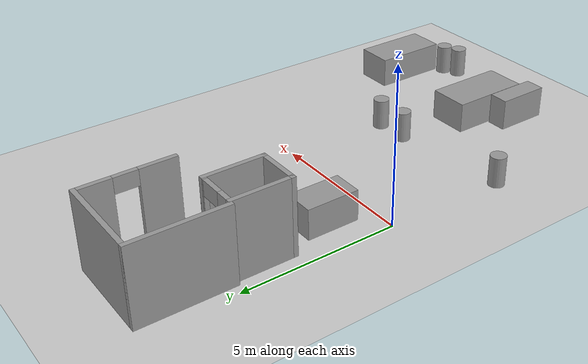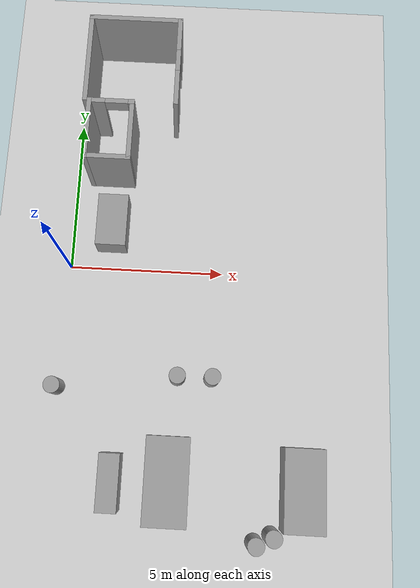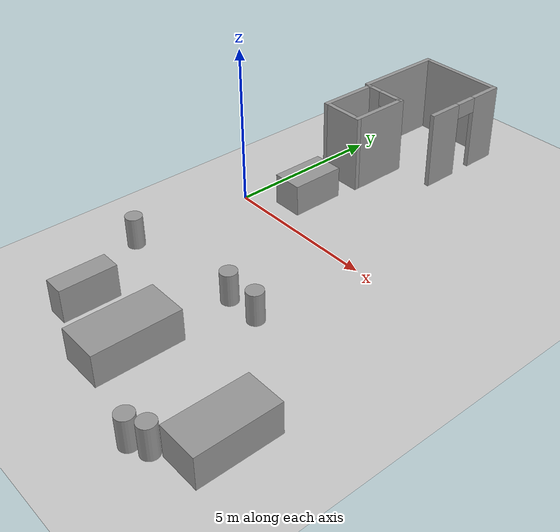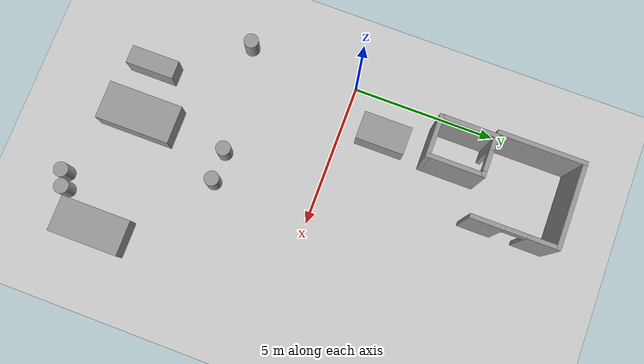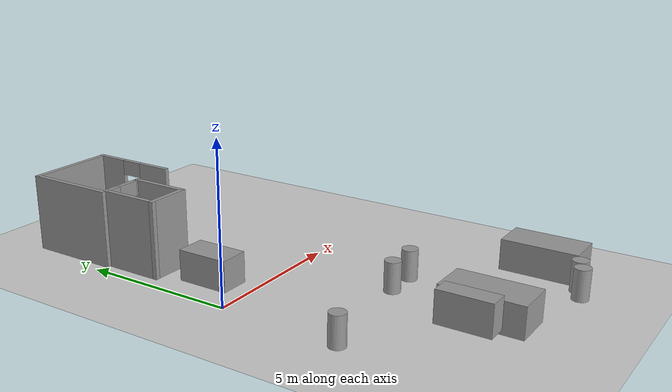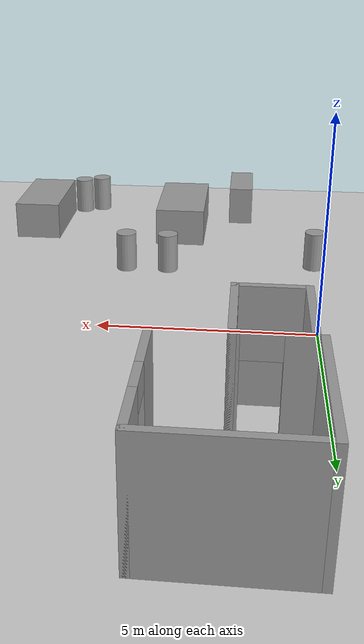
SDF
<sdf version="1.6">
 <world name="default">
  <model name="ground_plane">
   <static>1</static>
   <link name="link">
    <collision name="collision">
     <geometry><plane><normal>0 0 1</normal><size>100 100</size></plane></geometry>
     <surface><friction><ode><mu>100</mu><mu2>50</mu2></ode></friction></surface>
    </collision>
    <visual name="visual">
     <cast_shadows>0</cast_shadows>
     <geometry><plane><normal>0 0 1</normal><size>100 100</size></plane></geometry>
     <material>
      <script><uri>file://media/materials/scripts/gazebo.material</uri><name>Gazebo/Grey</name></script>
     </material>
    </visual>
   </link>
  </model>
  <model name="cma_banheiro_e">
   <pose>1.18358 3.89879 0 0 -0 0</pose>
   <link name="Wall_10">
    <collision name="Wall_10_Collision">
     <geometry><box><size>1.5 0.15 2.5</size></box></geometry>
     <pose>0 0 1.25 0 -0 0</pose>
    </collision>
    <visual name="Wall_10_Visual">
     <pose>0 0 1.25 0 -0 0</pose>
     <geometry><box><size>1.5 0.15 2.5</size></box></geometry>
     <material>
      <script><uri>file://media/materials/scripts/gazebo.material</uri><name>Gazebo/Grey</name></script>
      <ambient>1 1 1 1</ambient>
     </material>
    </visual>
    <pose>0 -0.925 0 0 -0 3.14159</pose>
   </link>
   <link name="Wall_11">
    <collision name="Wall_11_Collision">
     <geometry><box><size>2 0.15 2.5</size></box></geometry>
     <pose>0 0 1.25 0 -0 0</pose>
    </collision>
    <visual name="Wall_11_Visual">
     <pose>0 0 1.25 0 -0 0</pose>
     <geometry><box><size>2 0.15 2.5</size></box></geometry>
     <material>
      <script><uri>file://media/materials/scripts/gazebo.material</uri><name>Gazebo/Grey</name></script>
      <ambient>1 1 1 1</ambient>
     </material>
    </visual>
    <pose>-0.675 0 0 0 -0 1.5708</pose>
   </link>
   <link name="Wall_12">
    <pose>0 0.925 0 0 -0 0</pose>
    <visual name="Wall_12_Visual_0">
     <pose>-0.4625 0 1.25 0 -0 0</pose>
     <geometry><box><size>0.575 0.15 2.5</size></box></geometry>
     <material>
      <script><uri>file://media/materials/scripts/gazebo.material</uri><name>Gazebo/Grey</name></script>
      <ambient>1 1 1 1</ambient>
     </material>
    </visual>
    <collision name="Wall_12_Collision_0">
     <geometry><box><size>0.575 0.15 2.5</size></box></geometry>
     <pose>-0.4625 0 1.25 0 -0 0</pose>
    </collision>
    <visual name="Wall_12_Visual_1">
     <pose>0.6475 0 1.25 0 -0 0</pose>
     <geometry><box><size>0.205 0.15 2.5</size></box></geometry>
     <material>
      <script><uri>file://media/materials/scripts/gazebo.material</uri><name>Gazebo/Grey</name></script>
      <ambient>1 1 1 1</ambient>
     </material>
    </visual>
    <collision name="Wall_12_Collision_1">
     <geometry><box><size>0.205 0.15 2.5</size></box></geometry>
     <pose>0.6475 0 1.25 0 -0 0</pose>
    </collision>
    <visual name="Wall_12_Visual_2">
     <pose>0.185 0 2.25 0 -0 0</pose>
     <geometry><box><size>0.72 0.15 0.5</size></box></geometry>
     <material>
      <script><uri>file://media/materials/scripts/gazebo.material</uri><name>Gazebo/Grey</name></script>
      <ambient>1 1 1 1</ambient>
     </material>
    </visual>
    <collision name="Wall_12_Collision_2">
     <geometry><box><size>0.72 0.15 0.5</size></box></geometry>
     <pose>0.185 0 2.25 0 -0 0</pose>
    </collision>
   </link>
   <link name="Wall_13">
    <collision name="Wall_13_Collision">
     <geometry><box><size>2 0.15 2.5</size></box></geometry>
     <pose>0 0 1.25 0 -0 0</pose>
    </collision>
    <visual name="Wall_13_Visual">
     <pose>0 0 1.25 0 -0 0</pose>
     <geometry><box><size>2 0.15 2.5</size></box></geometry>
     <material>
      <script><uri>file://media/materials/scripts/gazebo.material</uri><name>Gazebo/Grey</name></script>
      <ambient>1 1 1 1</ambient>
     </material>
    </visual>
    <pose>0.675 0 0 0 0 -1.5708</pose>
   </link>
   <static>1</static>
  </model>
  <model name="cma_qe">
   <pose>1.79561 6.31228 0 0 -0 0</pose>
   <link name="Wall_15">
    <collision name="Wall_15_Collision">
     <geometry><box><size>3 0.15 2.5</size></box></geometry>
     <pose>0 0 1.25 0 -0 0</pose>
    </collision>
    <visual name="Wall_15_Visual">
     <pose>0 0 1.25 0 -0 0</pose>
     <geometry><box><size>3 0.15 2.5</size></box></geometry>
     <material>
      <script><uri>file://media/materials/scripts/gazebo.material</uri><name>Gazebo/Grey</name></script>
      <ambient>1 1 1 1</ambient>
     </material>
    </visual>
    <pose>-1.425 0 0 0 -0 1.5708</pose>
   </link>
   <link name="Wall_16">
    <collision name="Wall_16_Collision">
     <geometry><box><size>3 0.15 2.5</size></box></geometry>
     <pose>0 0 1.25 0 -0 0</pose>
    </collision>
    <visual name="Wall_16_Visual">
     <pose>0 0 1.25 0 -0 0</pose>
     <geometry><box><size>3 0.15 2.5</size></box></geometry>
     <material>
      <script><uri>file://media/materials/scripts/gazebo.material</uri><name>Gazebo/Grey</name></script>
      <ambient>1 1 1 1</ambient>
     </material>
    </visual>
    <pose>0 1.425 0 0 -0 0</pose>
   </link>
   <link name="Wall_17">
    <pose>1.425 0 0 0 0 -1.5708</pose>
    <visual name="Wall_17_Visual_0">
     <pose>-0.945 0 1.25 0 -0 0</pose>
     <geometry><box><size>1.11 0.15 2.5</size></box></geometry>
     <material>
      <script><uri>file://media/materials/scripts/gazebo.material</uri><name>Gazebo/Grey</name></script>
      <ambient>1 1 1 1</ambient>
     </material>
    </visual>
    <collision name="Wall_17_Collision_0">
     <geometry><box><size>1.11 0.15 2.5</size></box></geometry>
     <pose>-0.945 0 1.25 0 -0 0</pose>
    </collision>
    <visual name="Wall_17_Visual_1">
     <pose>0.92 0 1.25 0 -0 0</pose>
     <geometry><box><size>1.16 0.15 2.5</size></box></geometry>
     <material>
      <script><uri>file://media/materials/scripts/gazebo.material</uri><name>Gazebo/Grey</name></script>
      <ambient>1 1 1 1</ambient>
     </material>
    </visual>
    <collision name="Wall_17_Collision_1">
     <geometry><box><size>1.16 0.15 2.5</size></box></geometry>
     <pose>0.92 0 1.25 0 -0 0</pose>
    </collision>
    <visual name="Wall_17_Visual_2">
     <pose>-0.025 0 2.25 0 -0 0</pose>
     <geometry><box><size>0.73 0.15 0.5</size></box></geometry>
     <material>
      <script><uri>file://media/materials/scripts/gazebo.material</uri><name>Gazebo/Grey</name></script>
      <ambient>1 1 1 1</ambient>
     </material>
    </visual>
    <collision name="Wall_17_Collision_2">
     <geometry><box><size>0.73 0.15 0.5</size></box></geometry>
     <pose>-0.025 0 2.25 0 -0 0</pose>
    </collision>
   </link>
   <static>1</static>
  </model>
  <model name="cma_sofa_2_lugares">
   <link name="link_0">
    <pose>-0.034013 -0.039828 0 0 -0 0</pose>
    <inertial>
     <mass>1.66071</mass>
     <inertia>
      <ixx>0.538183</ixx>
      <ixy>0</ixy>
      <ixz>0</ixz>
      <iyy>0.270519</iyy>
      <iyz>0</iyz>
      <izz>0.531915</izz>
     </inertia>
    </inertial>
    <visual name="visual">
     <geometry><box><size>0.977147 1.69968 1</size></box></geometry>
     <material>
      <lighting>1</lighting>
      <script><uri>file://media/materials/scripts/gazebo.material</uri><name>Gazebo/Grey</name></script>
      <ambient>0.3 0.3 0.3 1</ambient>
      <diffuse>0.7 0.7 0.7 1</diffuse>
      <specular>0.01 0.01 0.01 1</specular>
      <emissive>0 0 0 1</emissive>
     </material>
    </visual>
    <collision name="collision">
     <geometry><box><size>0.977147 1.69968 1</size></box></geometry>
     <surface>
      <friction>
       <ode><mu>1</mu><mu2>1</mu2><fdir1>0 0 0</fdir1><slip1>0</slip1><slip2>0</slip2></ode>
       <torsional>
        <coefficient>1</coefficient>
        <patch_radius>0</patch_radius>
        <surface_radius>0</surface_radius>
        <use_patch_radius>1</use_patch_radius>
        <ode><slip>0</slip></ode>
       </torsional>
      </friction>
      <bounce><restitution_coefficient>0</restitution_coefficient><threshold>1e+06</threshold></bounce>
      <contact>
       <collide_without_contact>0</collide_without_contact>
       <collide_without_contact_bitmask>1</collide_without_contact_bitmask>
       <collide_bitmask>1</collide_bitmask>
       <ode>
        <soft_cfm>0</soft_cfm>
        <soft_erp>0.2</soft_erp>
        <kp>1e+13</kp>
        <kd>1</kd>
        <max_vel>0.01</max_vel>
        <min_depth>0</min_depth>
       </ode>
       <bullet>
        <split_impulse>1</split_impulse>
        <split_impulse_penetration_threshold>-0.01</split_impulse_penetration_threshold>
        <soft_cfm>0</soft_cfm>
        <soft_erp>0.2</soft_erp>
        <kp>1e+13</kp>
        <kd>1</kd>
       </bullet>
      </contact>
     </surface>
    </collision>
   </link>
   <static>0</static>
   <pose>1.36451 1.473 0.499998 -0 5e-06 4.4e-05</pose>
  </model>
  <model name="cma_sofa_ch2">
   <link name="link_0">
    <pose>7.54152 -9.06061 0.5 0 -0 0</pose>
    <inertial>
     <mass>3.05287</mass>
     <inertia><ixx>1.79053</ixx><ixy>0</ixy><ixz>0</ixz><iyy>0.647089</iyy><iyz>0</iyz><izz>1.92881</izz></inertia>
    </inertial>
    <visual name="visual">
     <geometry><box><size>1.24235 2.45729 1</size></box></geometry>
     <material>
      <lighting>1</lighting>
      <script><uri>file://media/materials/scripts/gazebo.material</uri><name>Gazebo/Grey</name></script>
      <ambient>0.3 0.3 0.3 1</ambient>
      <diffuse>0.7 0.7 0.7 1</diffuse>
      <specular>0.01 0.01 0.01 1</specular>
      <emissive>0 0 0 1</emissive>
     </material>
    </visual>
    <collision name="collision">
     <geometry><box><size>1.24235 2.45729 1</size></box></geometry>
     <surface>
      <friction>
       <ode><mu>1</mu><mu2>1</mu2><fdir1>0 0 0</fdir1><slip1>0</slip1><slip2>0</slip2></ode>
       <torsional>
        <coefficient>1</coefficient>
        <patch_radius>0</patch_radius>
        <surface_radius>0</surface_radius>
        <use_patch_radius>1</use_patch_radius>
        <ode><slip>0</slip></ode>
       </torsional>
      </friction>
      <bounce><restitution_coefficient>0</restitution_coefficient><threshold>1e+06</threshold></bounce>
      <contact>
       <collide_without_contact>0</collide_without_contact>
       <collide_without_contact_bitmask>1</collide_without_contact_bitmask>
       <collide_bitmask>1</collide_bitmask>
       <ode>
        <soft_cfm>0</soft_cfm>
        <soft_erp>0.2</soft_erp>
        <kp>1e+13</kp>
        <kd>1</kd>
        <max_vel>0.01</max_vel>
        <min_depth>0</min_depth>
       </ode>
       <bullet>
        <split_impulse>1</split_impulse>
        <split_impulse_penetration_threshold>-0.01</split_impulse_penetration_threshold>
        <soft_cfm>0</soft_cfm>
        <soft_erp>0.2</soft_erp>
        <kp>1e+13</kp>
        <kd>1</kd>
       </bullet>
      </contact>
     </surface>
    </collision>
   </link>
   <model name="cma_armarioL">
    <link name="link_0">
     <pose>3.66226 -6.16735 0.5 0 -0 0</pose>
     <inertial>
      <mass>1.04821</mass>
      <inertia>
       <ixx>0.330873</ixx>
       <ixy>0</ixy>
       <ixz>0</ixz>
       <iyy>0.121777</iyy>
       <iyz>0</iyz>
       <izz>0.277949</izz>
      </inertia>
     </inertial>
     <visual name="visual">
      <geometry><box><size>0.627792 1.66972 1</size></box></geometry>
      <material>
       <lighting>1</lighting>
       <script><uri>file://media/materials/scripts/gazebo.material</uri><name>Gazebo/Grey</name></script>
       <ambient>0.3 0.3 0.3 1</ambient>
       <diffuse>0.7 0.7 0.7 1</diffuse>
       <specular>0.01 0.01 0.01 1</specular>
       <emissive>0 0 0 1</emissive>
      </material>
     </visual>
     <collision name="collision">
      <geometry><box><size>0.627792 1.66972 1</size></box></geometry>
      <surface>
       <friction>
        <ode><mu>1</mu><mu2>1</mu2><fdir1>0 0 0</fdir1><slip1>0</slip1><slip2>0</slip2></ode>
        <torsional>
         <coefficient>1</coefficient>
         <patch_radius>0</patch_radius>
         <surface_radius>0</surface_radius>
         <use_patch_radius>1</use_patch_radius>
         <ode><slip>0</slip></ode>
        </torsional>
       </friction>
       <bounce><restitution_coefficient>0</restitution_coefficient><threshold>1e+06</threshold></bounce>
       <contact>
        <collide_without_contact>0</collide_without_contact>
        <collide_without_contact_bitmask>1</collide_without_contact_bitmask>
        <collide_bitmask>1</collide_bitmask>
        <ode>
         <soft_cfm>0</soft_cfm>
         <soft_erp>0.2</soft_erp>
         <kp>1e+13</kp>
         <kd>1</kd>
         <max_vel>0.01</max_vel>
         <min_depth>0</min_depth>
        </ode>
        <bullet>
         <split_impulse>1</split_impulse>
         <split_impulse_penetration_threshold>-0.01</split_impulse_penetration_threshold>
         <soft_cfm>0</soft_cfm>
         <soft_erp>0.2</soft_erp>
         <kp>1e+13</kp>
         <kd>1</kd>
        </bullet>
       </contact>
      </surface>
     </collision>
    </link>
    <static>0</static>
    <pose>-1.91803 -2.92011 0.5 0 -0 0</pose>
   </model>
   <model name="cma_cesto">
    <link name="link_1">
     <pose>-0.329659 -1.55494 0 0 -0 0</pose>
     <inertial>
      <mass>0.267897</mass>
      <inertia>
       <ixx>0.0268102</ixx>
       <ixy>0</ixy>
       <ixz>0</ixz>
       <iyy>0.0268102</iyy>
       <iyz>0</iyz>
       <izz>0.00897111</izz>
      </inertia>
     </inertial>
     <visual name="visual">
      <geometry><cylinder><radius>0.258792</radius><length>1</length></cylinder></geometry>
      <material>
       <lighting>1</lighting>
       <script><uri>file://media/materials/scripts/gazebo.material</uri><name>Gazebo/Grey</name></script>
       <ambient>0.3 0.3 0.3 1</ambient>
       <diffuse>0.7 0.7 0.7 1</diffuse>
       <specular>0.01 0.01 0.01 1</specular>
       <emissive>0 0 0 1</emissive>
      </material>
     </visual>
     <collision name="collision">
      <geometry><cylinder><radius>0.258792</radius><length>1</length></cylinder></geometry>
      <surface>
       <friction>
        <ode><mu>1</mu><mu2>1</mu2><fdir1>0 0 0</fdir1><slip1>0</slip1><slip2>0</slip2></ode>
        <torsional>
         <coefficient>1</coefficient>
         <patch_radius>0</patch_radius>
         <surface_radius>0</surface_radius>
         <use_patch_radius>1</use_patch_radius>
         <ode><slip>0</slip></ode>
        </torsional>
       </friction>
       <bounce><restitution_coefficient>0</restitution_coefficient><threshold>1e+06</threshold></bounce>
       <contact>
        <collide_without_contact>0</collide_without_contact>
        <collide_without_contact_bitmask>1</collide_without_contact_bitmask>
        <collide_bitmask>1</collide_bitmask>
        <ode>
         <soft_cfm>0</soft_cfm>
         <soft_erp>0.2</soft_erp>
         <kp>1e+13</kp>
         <kd>1</kd>
         <max_vel>0.01</max_vel>
         <min_depth>0</min_depth>
        </ode>
        <bullet>
         <split_impulse>1</split_impulse>
         <split_impulse_penetration_threshold>-0.01</split_impulse_penetration_threshold>
         <soft_cfm>0</soft_cfm>
         <soft_erp>0.2</soft_erp>
         <kp>1e+13</kp>
         <kd>1</kd>
        </bullet>
       </contact>
      </surface>
     </collision>
    </link>
    <static>0</static>
    <pose>6.97935 -8.88509 0.5 0 -0 0</pose>
   </model>
   <model name="cma_cesto_0">
    <link name="link_1">
     <pose>-0.329659 -1.55494 0 0 -0 0</pose>
     <inertial>
      <mass>0.267897</mass>
      <inertia>
       <ixx>0.0268102</ixx>
       <ixy>0</ixy>
       <ixz>0</ixz>
       <iyy>0.0268102</iyy>
       <iyz>0</iyz>
       <izz>0.00897111</izz>
      </inertia>
     </inertial>
     <visual name="visual">
      <geometry><cylinder><radius>0.258792</radius><length>1</length></cylinder></geometry>
      <material>
       <lighting>1</lighting>
       <script><uri>file://media/materials/scripts/gazebo.material</uri><name>Gazebo/Grey</name></script>
       <ambient>0.3 0.3 0.3 1</ambient>
       <diffuse>0.7 0.7 0.7 1</diffuse>
       <specular>0.01 0.01 0.01 1</specular>
       <emissive>0 0 0 1</emissive>
      </material>
     </visual>
     <collision name="collision">
      <geometry><cylinder><radius>0.258792</radius><length>1</length></cylinder></geometry>
      <surface>
       <friction>
        <ode><mu>1</mu><mu2>1</mu2><fdir1>0 0 0</fdir1><slip1>0</slip1><slip2>0</slip2></ode>
        <torsional>
         <coefficient>1</coefficient>
         <patch_radius>0</patch_radius>
         <surface_radius>0</surface_radius>
         <use_patch_radius>1</use_patch_radius>
         <ode><slip>0</slip></ode>
        </torsional>
       </friction>
       <bounce><restitution_coefficient>0</restitution_coefficient><threshold>1e+06</threshold></bounce>
       <contact>
        <collide_without_contact>0</collide_without_contact>
        <collide_without_contact_bitmask>1</collide_without_contact_bitmask>
        <collide_bitmask>1</collide_bitmask>
        <ode>
         <soft_cfm>0</soft_cfm>
         <soft_erp>0.2</soft_erp>
         <kp>1e+13</kp>
         <kd>1</kd>
         <max_vel>0.01</max_vel>
         <min_depth>0</min_depth>
        </ode>
        <bullet>
         <split_impulse>1</split_impulse>
         <split_impulse_penetration_threshold>-0.01</split_impulse_penetration_threshold>
         <soft_cfm>0</soft_cfm>
         <soft_erp>0.2</soft_erp>
         <kp>1e+13</kp>
         <kd>1</kd>
        </bullet>
       </contact>
      </surface>
     </collision>
    </link>
    <static>0</static>
    <pose>6.4663 -9.11922 0.5 0 -0 0</pose>
   </model>
   <model name="cma_cesto_1">
    <link name="link_1">
     <pose>-0.329659 -1.55494 0 0 -0 0</pose>
     <inertial>
      <mass>0.267897</mass>
      <inertia>
       <ixx>0.0268102</ixx>
       <ixy>0</ixy>
       <ixz>0</ixz>
       <iyy>0.0268102</iyy>
       <iyz>0</iyz>
       <izz>0.00897111</izz>
      </inertia>
     </inertial>
     <visual name="visual">
      <geometry><cylinder><radius>0.258792</radius><length>1</length></cylinder></geometry>
      <material>
       <lighting>1</lighting>
       <script><uri>file://media/materials/scripts/gazebo.material</uri><name>Gazebo/Grey</name></script>
       <ambient>0.3 0.3 0.3 1</ambient>
       <diffuse>0.7 0.7 0.7 1</diffuse>
       <specular>0.01 0.01 0.01 1</specular>
       <emissive>0 0 0 1</emissive>
      </material>
     </visual>
     <collision name="collision">
      <geometry><cylinder><radius>0.258792</radius><length>1</length></cylinder></geometry>
      <surface>
       <friction>
        <ode><mu>1</mu><mu2>1</mu2><fdir1>0 0 0</fdir1><slip1>0</slip1><slip2>0</slip2></ode>
        <torsional>
         <coefficient>1</coefficient>
         <patch_radius>0</patch_radius>
         <surface_radius>0</surface_radius>
         <use_patch_radius>1</use_patch_radius>
         <ode><slip>0</slip></ode>
        </torsional>
       </friction>
       <bounce><restitution_coefficient>0</restitution_coefficient><threshold>1e+06</threshold></bounce>
       <contact>
        <collide_without_contact>0</collide_without_contact>
        <collide_without_contact_bitmask>1</collide_without_contact_bitmask>
        <collide_bitmask>1</collide_bitmask>
        <ode>
         <soft_cfm>0</soft_cfm>
         <soft_erp>0.2</soft_erp>
         <kp>1e+13</kp>
         <kd>1</kd>
         <max_vel>0.01</max_vel>
         <min_depth>0</min_depth>
        </ode>
        <bullet>
         <split_impulse>1</split_impulse>
         <split_impulse_penetration_threshold>-0.01</split_impulse_penetration_threshold>
         <soft_cfm>0</soft_cfm>
         <soft_erp>0.2</soft_erp>
         <kp>1e+13</kp>
         <kd>1</kd>
        </bullet>
       </contact>
      </surface>
     </collision>
    </link>
    <static>0</static>
    <pose>0.091229 -4.78918 0.5 0 -0 0</pose>
   </model>
   <model name="cma_cesto_2">
    <link name="link_1">
     <pose>-0.329659 -1.55494 0 0 -0 0</pose>
     <inertial>
      <mass>0.267897</mass>
      <inertia>
       <ixx>0.0268102</ixx>
       <ixy>0</ixy>
       <ixz>0</ixz>
       <iyy>0.0268102</iyy>
       <iyz>0</iyz>
       <izz>0.00897111</izz>
      </inertia>
     </inertial>
     <visual name="visual">
      <geometry><cylinder><radius>0.258792</radius><length>1</length></cylinder></geometry>
      <material>
       <lighting>1</lighting>
       <script><uri>file://media/materials/scripts/gazebo.material</uri><name>Gazebo/Grey</name></script>
       <ambient>0.3 0.3 0.3 1</ambient>
       <diffuse>0.7 0.7 0.7 1</diffuse>
       <specular>0.01 0.01 0.01 1</specular>
       <emissive>0 0 0 1</emissive>
      </material>
     </visual>
     <collision name="collision">
      <geometry><cylinder><radius>0.258792</radius><length>1</length></cylinder></geometry>
      <surface>
       <friction>
        <ode><mu>1</mu><mu2>1</mu2><fdir1>0 0 0</fdir1><slip1>0</slip1><slip2>0</slip2></ode>
        <torsional>
         <coefficient>1</coefficient>
         <patch_radius>0</patch_radius>
         <surface_radius>0</surface_radius>
         <use_patch_radius>1</use_patch_radius>
         <ode><slip>0</slip></ode>
        </torsional>
       </friction>
       <bounce><restitution_coefficient>0</restitution_coefficient><threshold>1e+06</threshold></bounce>
       <contact>
        <collide_without_contact>0</collide_without_contact>
        <collide_without_contact_bitmask>1</collide_without_contact_bitmask>
        <collide_bitmask>1</collide_bitmask>
        <ode>
         <soft_cfm>0</soft_cfm>
         <soft_erp>0.2</soft_erp>
         <kp>1e+13</kp>
         <kd>1</kd>
         <max_vel>0.01</max_vel>
         <min_depth>0</min_depth>
        </ode>
        <bullet>
         <split_impulse>1</split_impulse>
         <split_impulse_penetration_threshold>-0.01</split_impulse_penetration_threshold>
         <soft_cfm>0</soft_cfm>
         <soft_erp>0.2</soft_erp>
         <kp>1e+13</kp>
         <kd>1</kd>
        </bullet>
       </contact>
      </surface>
     </collision>
    </link>
    <static>0</static>
    <pose>5.00434 -4.30015 0.5 0 -0 0</pose>
   </model>
   <model name="cma_cesto_3">
    <link name="link_1">
     <pose>-0.329659 -1.55494 0 0 -0 0</pose>
     <inertial>
      <mass>0.267897</mass>
      <inertia>
       <ixx>0.0268102</ixx>
       <ixy>0</ixy>
       <ixz>0</ixz>
       <iyy>0.0268102</iyy>
       <iyz>0</iyz>
       <izz>0.00897111</izz>
      </inertia>
     </inertial>
     <visual name="visual">
      <geometry><cylinder><radius>0.258792</radius><length>1</length></cylinder></geometry>
      <material>
       <lighting>1</lighting>
       <script><uri>file://media/materials/scripts/gazebo.material</uri><name>Gazebo/Grey</name></script>
       <ambient>0.3 0.3 0.3 1</ambient>
       <diffuse>0.7 0.7 0.7 1</diffuse>
       <specular>0.01 0.01 0.01 1</specular>
       <emissive>0 0 0 1</emissive>
      </material>
     </visual>
     <collision name="collision">
      <geometry><cylinder><radius>0.258792</radius><length>1</length></cylinder></geometry>
      <surface>
       <friction>
        <ode><mu>1</mu><mu2>1</mu2><fdir1>0 0 0</fdir1><slip1>0</slip1><slip2>0</slip2></ode>
        <torsional>
         <coefficient>1</coefficient>
         <patch_radius>0</patch_radius>
         <surface_radius>0</surface_radius>
         <use_patch_radius>1</use_patch_radius>
         <ode><slip>0</slip></ode>
        </torsional>
       </friction>
       <bounce><restitution_coefficient>0</restitution_coefficient><threshold>1e+06</threshold></bounce>
       <contact>
        <collide_without_contact>0</collide_without_contact>
        <collide_without_contact_bitmask>1</collide_without_contact_bitmask>
        <collide_bitmask>1</collide_bitmask>
        <ode>
         <soft_cfm>0</soft_cfm>
         <soft_erp>0.2</soft_erp>
         <kp>1e+13</kp>
         <kd>1</kd>
         <max_vel>0.01</max_vel>
         <min_depth>0</min_depth>
        </ode>
        <bullet>
         <split_impulse>1</split_impulse>
         <split_impulse_penetration_threshold>-0.01</split_impulse_penetration_threshold>
         <soft_cfm>0</soft_cfm>
         <soft_erp>0.2</soft_erp>
         <kp>1e+13</kp>
         <kd>1</kd>
        </bullet>
       </contact>
      </surface>
     </collision>
    </link>
    <static>0</static>
    <pose>3.91768 -4.3154 0.5 0 -0 0</pose>
   </model>
   <model name="cma_sofa_ch1">
    <link name="link_0">
     <pose>-4e-06 5e-06 0 0 -0 0</pose>
     <inertial>
      <mass>3.51192</mass>
      <inertia><ixx>2.30831</ixx><ixy>0</ixy><ixz>0</ixz><iyy>0.816746</iyy><iyz>0</iyz><izz>2.53974</izz></inertia>
     </inertial>
     <visual name="visual">
      <geometry><box><size>1.33823 2.62439 1</size></box></geometry>
      <material>
       <lighting>1</lighting>
       <script><uri>file://media/materials/scripts/gazebo.material</uri><name>Gazebo/Grey</name></script>
       <ambient>0.3 0.3 0.3 1</ambient>
       <diffuse>0.7 0.7 0.7 1</diffuse>
       <specular>0.01 0.01 0.01 1</specular>
       <emissive>0 0 0 1</emissive>
      </material>
     </visual>
     <collision name="collision">
      <geometry><box><size>1.33823 2.62439 1</size></box></geometry>
      <surface>
       <friction>
        <ode><mu>1</mu><mu2>1</mu2><fdir1>0 0 0</fdir1><slip1>0</slip1><slip2>0</slip2></ode>
        <torsional>
         <coefficient>1</coefficient>
         <patch_radius>0</patch_radius>
         <surface_radius>0</surface_radius>
         <use_patch_radius>1</use_patch_radius>
         <ode><slip>0</slip></ode>
        </torsional>
       </friction>
       <bounce><restitution_coefficient>0</restitution_coefficient><threshold>1e+06</threshold></bounce>
       <contact>
        <collide_without_contact>0</collide_without_contact>
        <collide_without_contact_bitmask>1</collide_without_contact_bitmask>
        <collide_bitmask>1</collide_bitmask>
        <ode>
         <soft_cfm>0</soft_cfm>
         <soft_erp>0.2</soft_erp>
         <kp>1e+13</kp>
         <kd>1</kd>
         <max_vel>0.01</max_vel>
         <min_depth>0</min_depth>
        </ode>
        <bullet>
         <split_impulse>1</split_impulse>
         <split_impulse_penetration_threshold>-0.01</split_impulse_penetration_threshold>
         <soft_cfm>0</soft_cfm>
         <soft_erp>0.2</soft_erp>
         <kp>1e+13</kp>
         <kd>1</kd>
        </bullet>
       </contact>
      </surface>
     </collision>
    </link>
    <static>0</static>
    <pose>3.4236 -8.99816 0.5 0 -0 0</pose>
   </model>
   <static>0</static>
   <pose>0.11721 2.42164 0 0 -0 0</pose>
  </model>
 </world>
</sdf>
